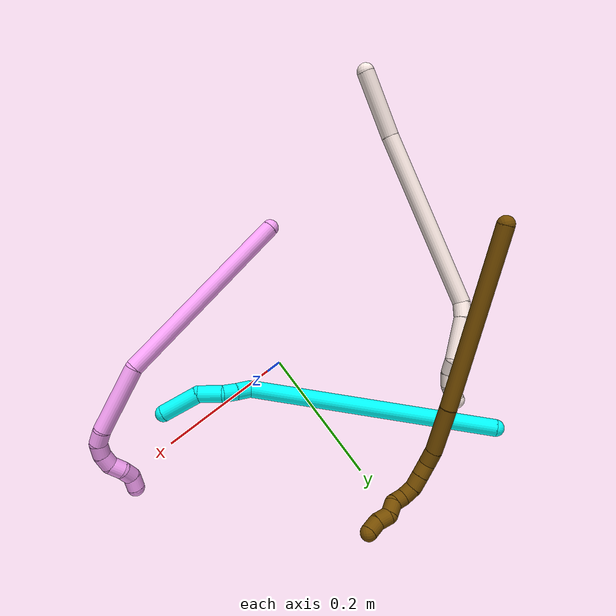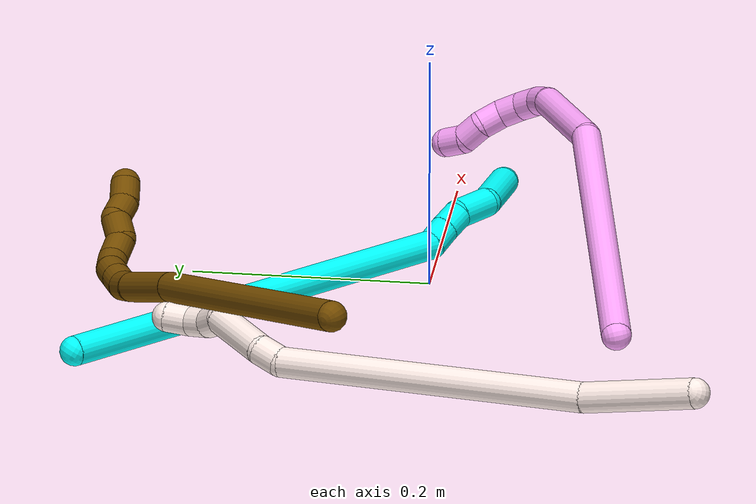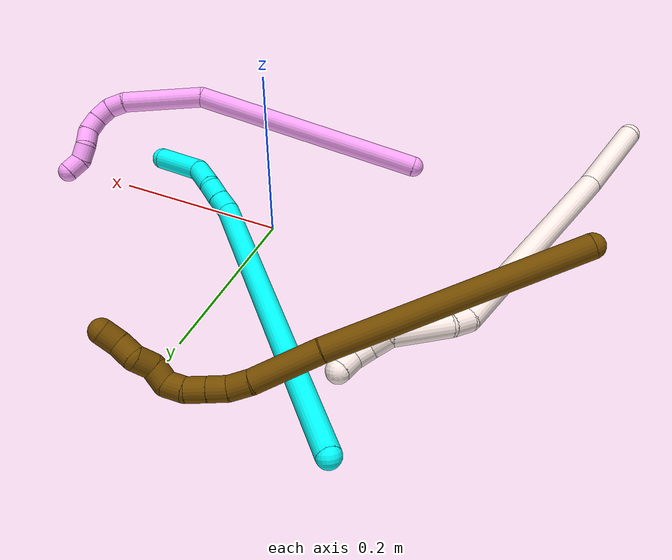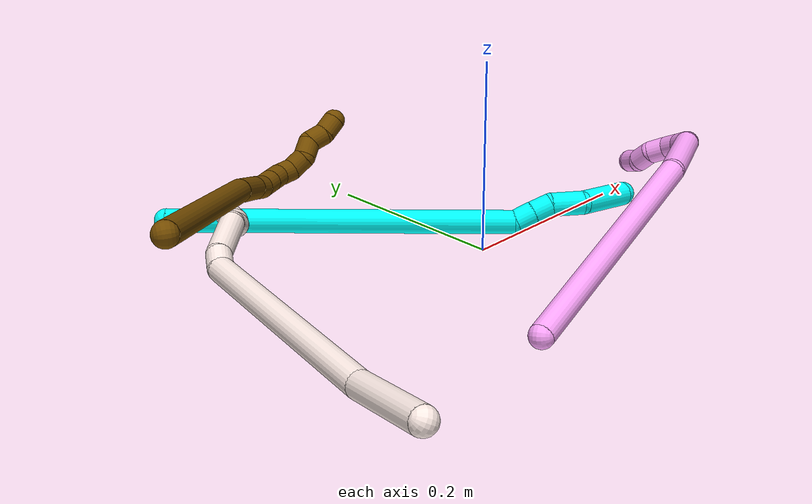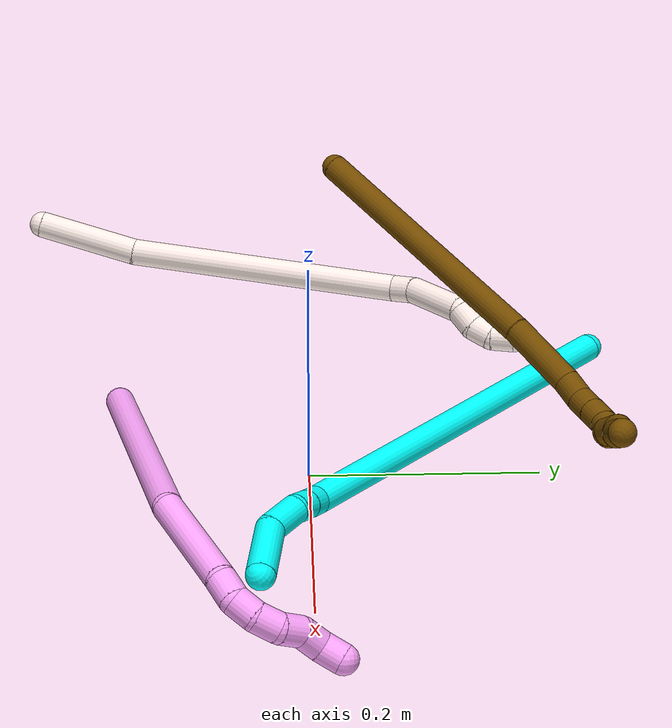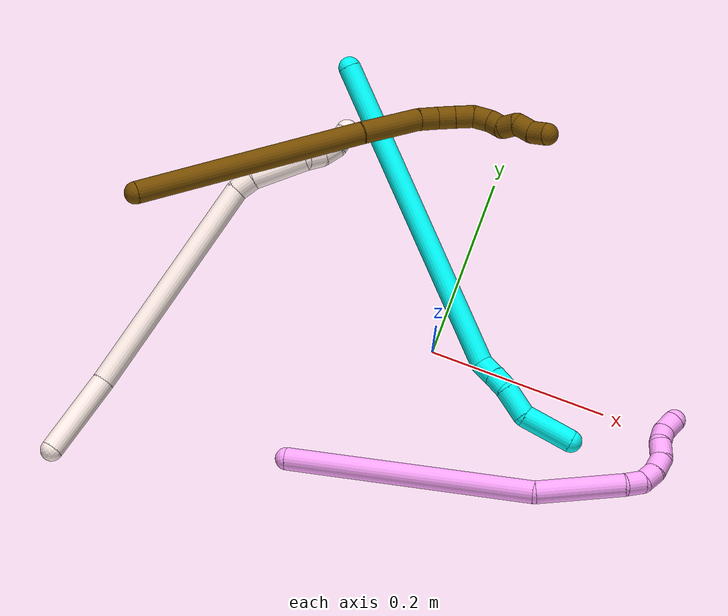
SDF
<sdf version="1.7">
 <world name="default">
  <model name="3">
   <static>0</static>
   <link name="3">
    <collision name="collision-cylinder-e_1_1_4">
     <pose>0.104138 -0.108624 -0.102714 2.32824 0.608435 1.25983</pose>
     <geometry><cylinder><radius>0.0125</radius><length>0.364385</length></cylinder></geometry>
     <surface>
      <friction><ode><mu>1.16</mu><mu2>1.16</mu2><slip1>0</slip1><slip2>0</slip2></ode></friction>
      <contact><ode><kp>1e+06</kp><kd>1</kd><max_vel>0</max_vel><min_depth>0.001</min_depth></ode></contact>
     </surface>
    </collision>
    <visual name="visual-cylinder-e_1_1_4">
     <pose>0.104138 -0.108624 -0.102714 2.32824 0.608435 1.25983</pose>
     <geometry><cylinder><radius>0.0125</radius><length>0.364385</length></cylinder></geometry>
     <material><ambient>0.003922 1 0.996078 1</ambient></material>
    </visual>
    <collision name="collision-cylinder-e_2_4_5">
     <pose>0.209643 -0.224105 -0.213383 2.43009 0.129393 0.345256</pose>
     <geometry><cylinder><radius>0.0125</radius><length>0.021183</length></cylinder></geometry>
     <surface>
      <friction><ode><mu>1.16</mu><mu2>1.16</mu2><slip1>0</slip1><slip2>0</slip2></ode></friction>
      <contact><ode><kp>1e+06</kp><kd>1</kd><max_vel>0</max_vel><min_depth>0.001</min_depth></ode></contact>
     </surface>
    </collision>
    <visual name="visual-cylinder-e_2_4_5">
     <pose>0.209643 -0.224105 -0.213383 2.43009 0.129393 0.345256</pose>
     <geometry><cylinder><radius>0.0125</radius><length>0.021183</length></cylinder></geometry>
     <material><ambient>0.003922 1 0.996078 1</ambient></material>
    </visual>
    <collision name="collision-cylinder-e_3_5_6">
     <pose>0.212839 -0.237364 -0.229285 2.46359 0.17737 0.494039</pose>
     <geometry><cylinder><radius>0.0125</radius><length>0.020735</length></cylinder></geometry>
     <surface>
      <friction><ode><mu>1.16</mu><mu2>1.16</mu2><slip1>0</slip1><slip2>0</slip2></ode></friction>
      <contact><ode><kp>1e+06</kp><kd>1</kd><max_vel>0</max_vel><min_depth>0.001</min_depth></ode></contact>
     </surface>
    </collision>
    <visual name="visual-cylinder-e_3_5_6">
     <pose>0.212839 -0.237364 -0.229285 2.46359 0.17737 0.494039</pose>
     <geometry><cylinder><radius>0.0125</radius><length>0.020735</length></cylinder></geometry>
     <material><ambient>0.003922 1 0.996078 1</ambient></material>
    </visual>
    <collision name="collision-cylinder-e_4_6_7">
     <pose>0.222633 -0.256225 -0.246723 2.22172 0.470468 0.901249</pose>
     <geometry><cylinder><radius>0.0125</radius><length>0.035142</length></cylinder></geometry>
     <surface>
      <friction><ode><mu>1.16</mu><mu2>1.16</mu2><slip1>0</slip1><slip2>0</slip2></ode></friction>
      <contact><ode><kp>1e+06</kp><kd>1</kd><max_vel>0</max_vel><min_depth>0.001</min_depth></ode></contact>
     </surface>
    </collision>
    <visual name="visual-cylinder-e_4_6_7">
     <pose>0.222633 -0.256225 -0.246723 2.22172 0.470468 0.901249</pose>
     <geometry><cylinder><radius>0.0125</radius><length>0.035142</length></cylinder></geometry>
     <material><ambient>0.003922 1 0.996078 1</ambient></material>
    </visual>
    <collision name="collision-cylinder-e_5_7_2">
     <pose>0.232909 -0.296415 -0.265316 1.88796 0.078997 0.109023</pose>
     <geometry><cylinder><radius>0.0125</radius><length>0.058555</length></cylinder></geometry>
     <surface>
      <friction><ode><mu>1.16</mu><mu2>1.16</mu2><slip1>0</slip1><slip2>0</slip2></ode></friction>
      <contact><ode><kp>1e+06</kp><kd>1</kd><max_vel>0</max_vel><min_depth>0.001</min_depth></ode></contact>
     </surface>
    </collision>
    <visual name="visual-cylinder-e_5_7_2">
     <pose>0.232909 -0.296415 -0.265316 1.88796 0.078997 0.109023</pose>
     <geometry><cylinder><radius>0.0125</radius><length>0.058555</length></cylinder></geometry>
     <material><ambient>0.003922 1 0.996078 1</ambient></material>
    </visual>
    <collision name="collision-sphere-2">
     <pose>0.235219 -0.324146 -0.274418 0 -0 0</pose>
     <geometry><sphere><radius>0.0125</radius></sphere></geometry>
     <surface>
      <friction><ode><mu>1.16</mu><mu2>1.16</mu2><slip1>0</slip1><slip2>0</slip2></ode></friction>
      <contact><ode><kp>1e+06</kp><kd>1</kd><max_vel>0</max_vel><min_depth>0.001</min_depth></ode></contact>
     </surface>
    </collision>
    <visual name="visual-sphere-2">
     <pose>0.235219 -0.324146 -0.274418 0 -0 0</pose>
     <geometry><sphere><radius>0.0125</radius></sphere></geometry>
     <material><ambient>0.003922 1 0.996078 1</ambient></material>
    </visual>
    <collision name="collision-sphere-7">
     <pose>0.230598 -0.268684 -0.256213 0 -0 0</pose>
     <geometry><sphere><radius>0.0125</radius></sphere></geometry>
     <surface>
      <friction><ode><mu>1.16</mu><mu2>1.16</mu2><slip1>0</slip1><slip2>0</slip2></ode></friction>
      <contact><ode><kp>1e+06</kp><kd>1</kd><max_vel>0</max_vel><min_depth>0.001</min_depth></ode></contact>
     </surface>
    </collision>
    <visual name="visual-sphere-7">
     <pose>0.230598 -0.268684 -0.256213 0 -0 0</pose>
     <geometry><sphere><radius>0.0125</radius></sphere></geometry>
     <material><ambient>0.003922 1 0.996078 1</ambient></material>
    </visual>
    <collision name="collision-sphere-6">
     <pose>0.214668 -0.243765 -0.237233 0 -0 0</pose>
     <geometry><sphere><radius>0.0125</radius></sphere></geometry>
     <surface>
      <friction><ode><mu>1.16</mu><mu2>1.16</mu2><slip1>0</slip1><slip2>0</slip2></ode></friction>
      <contact><ode><kp>1e+06</kp><kd>1</kd><max_vel>0</max_vel><min_depth>0.001</min_depth></ode></contact>
     </surface>
    </collision>
    <visual name="visual-sphere-6">
     <pose>0.214668 -0.243765 -0.237233 0 -0 0</pose>
     <geometry><sphere><radius>0.0125</radius></sphere></geometry>
     <material><ambient>0.003922 1 0.996078 1</ambient></material>
    </visual>
    <collision name="collision-sphere-5">
     <pose>0.21101 -0.230963 -0.221337 0 -0 0</pose>
     <geometry><sphere><radius>0.0125</radius></sphere></geometry>
     <surface>
      <friction><ode><mu>1.16</mu><mu2>1.16</mu2><slip1>0</slip1><slip2>0</slip2></ode></friction>
      <contact><ode><kp>1e+06</kp><kd>1</kd><max_vel>0</max_vel><min_depth>0.001</min_depth></ode></contact>
     </surface>
    </collision>
    <visual name="visual-sphere-5">
     <pose>0.21101 -0.230963 -0.221337 0 -0 0</pose>
     <geometry><sphere><radius>0.0125</radius></sphere></geometry>
     <material><ambient>0.003922 1 0.996078 1</ambient></material>
    </visual>
    <collision name="collision-sphere-1">
     <geometry><sphere><radius>0.0125</radius></sphere></geometry>
     <surface>
      <friction><ode><mu>1.16</mu><mu2>1.16</mu2><slip1>0</slip1><slip2>0</slip2></ode></friction>
      <contact><ode><kp>1e+06</kp><kd>1</kd><max_vel>0</max_vel><min_depth>0.001</min_depth></ode></contact>
     </surface>
    </collision>
    <visual name="visual-sphere-1">
     <geometry><sphere><radius>0.0125</radius></sphere></geometry>
     <material><ambient>0.003922 1 0.996078 1</ambient></material>
    </visual>
    <collision name="collision-sphere-4">
     <pose>0.208276 -0.217247 -0.205428 0 -0 0</pose>
     <geometry><sphere><radius>0.0125</radius></sphere></geometry>
     <surface>
      <friction><ode><mu>1.16</mu><mu2>1.16</mu2><slip1>0</slip1><slip2>0</slip2></ode></friction>
      <contact><ode><kp>1e+06</kp><kd>1</kd><max_vel>0</max_vel><min_depth>0.001</min_depth></ode></contact>
     </surface>
    </collision>
    <visual name="visual-sphere-4">
     <pose>0.208276 -0.217247 -0.205428 0 -0 0</pose>
     <geometry><sphere><radius>0.0125</radius></sphere></geometry>
     <material><ambient>0.003922 1 0.996078 1</ambient></material>
    </visual>
    <inertial>
     <pose>0.136525 -0.151221 -0.141816 0 -0 0</pose>
     <mass>0.5</mass>
     <inertia>
      <ixx>0.004226</ixx>
      <ixy>0</ixy>
      <ixz>0</ixz>
      <iyy>0.003883</iyy>
      <iyz>0</iyz>
      <izz>9.7e-05</izz>
     </inertia>
    </inertial>
   </link>
   <pose>-0.197233 0.26745 0.011979 2.76976 0.497132 -1.66702</pose>
  </model>
  <model name="4">
   <static>0</static>
   <link name="4">
    <collision name="collision-cylinder-e_1_1_4">
     <pose>0.036875 -0.132948 0.023148 1.39841 0.266742 0.224701</pose>
     <geometry><cylinder><radius>0.0125</radius><length>0.279791</length></cylinder></geometry>
     <surface>
      <friction><ode><mu>1.16</mu><mu2>1.16</mu2><slip1>0</slip1><slip2>0</slip2></ode></friction>
      <contact><ode><kp>1e+06</kp><kd>1</kd><max_vel>0</max_vel><min_depth>0.001</min_depth></ode></contact>
     </surface>
    </collision>
    <visual name="visual-cylinder-e_1_1_4">
     <pose>0.036875 -0.132948 0.023148 1.39841 0.266742 0.224701</pose>
     <geometry><cylinder><radius>0.0125</radius><length>0.279791</length></cylinder></geometry>
     <material><ambient>1 0.65098 0.996078 1</ambient></material>
    </visual>
    <collision name="collision-cylinder-e_2_4_5">
     <pose>0.074588 -0.314566 0.040399 1.69137 0.017082 0.019277</pose>
     <geometry><cylinder><radius>0.0125</radius><length>0.098068</length></cylinder></geometry>
     <surface>
      <friction><ode><mu>1.16</mu><mu2>1.16</mu2><slip1>0</slip1><slip2>0</slip2></ode></friction>
      <contact><ode><kp>1e+06</kp><kd>1</kd><max_vel>0</max_vel><min_depth>0.001</min_depth></ode></contact>
     </surface>
    </collision>
    <visual name="visual-cylinder-e_2_4_5">
     <pose>0.074588 -0.314566 0.040399 1.69137 0.017082 0.019277</pose>
     <geometry><cylinder><radius>0.0125</radius><length>0.098068</length></cylinder></geometry>
     <material><ambient>1 0.65098 0.996078 1</ambient></material>
    </visual>
    <collision name="collision-cylinder-e_3_5_6">
     <pose>0.072866 -0.373397 0.031907 1.82088 -0.239402 -0.307279</pose>
     <geometry><cylinder><radius>0.0125</radius><length>0.021588</length></cylinder></geometry>
     <surface>
      <friction><ode><mu>1.16</mu><mu2>1.16</mu2><slip1>0</slip1><slip2>0</slip2></ode></friction>
      <contact><ode><kp>1e+06</kp><kd>1</kd><max_vel>0</max_vel><min_depth>0.001</min_depth></ode></contact>
     </surface>
    </collision>
    <visual name="visual-cylinder-e_3_5_6">
     <pose>0.072866 -0.373397 0.031907 1.82088 -0.239402 -0.307279</pose>
     <geometry><cylinder><radius>0.0125</radius><length>0.021588</length></cylinder></geometry>
     <material><ambient>1 0.65098 0.996078 1</ambient></material>
    </visual>
    <collision name="collision-cylinder-e_4_6_7">
     <pose>0.067089 -0.390488 0.022763 2.32786 -0.325396 -0.727926</pose>
     <geometry><cylinder><radius>0.0125</radius><length>0.020128</length></cylinder></geometry>
     <surface>
      <friction><ode><mu>1.16</mu><mu2>1.16</mu2><slip1>0</slip1><slip2>0</slip2></ode></friction>
      <contact><ode><kp>1e+06</kp><kd>1</kd><max_vel>0</max_vel><min_depth>0.001</min_depth></ode></contact>
     </surface>
    </collision>
    <visual name="visual-cylinder-e_4_6_7">
     <pose>0.067089 -0.390488 0.022763 2.32786 -0.325396 -0.727926</pose>
     <geometry><cylinder><radius>0.0125</radius><length>0.020128</length></cylinder></geometry>
     <material><ambient>1 0.65098 0.996078 1</ambient></material>
    </visual>
    <collision name="collision-cylinder-e_5_7_8">
     <pose>0.060769 -0.401832 0.00759 2.66864 -0.309941 -1.15031</pose>
     <geometry><cylinder><radius>0.0125</radius><length>0.020343</length></cylinder></geometry>
     <surface>
      <friction><ode><mu>1.16</mu><mu2>1.16</mu2><slip1>0</slip1><slip2>0</slip2></ode></friction>
      <contact><ode><kp>1e+06</kp><kd>1</kd><max_vel>0</max_vel><min_depth>0.001</min_depth></ode></contact>
     </surface>
    </collision>
    <visual name="visual-cylinder-e_5_7_8">
     <pose>0.060769 -0.401832 0.00759 2.66864 -0.309941 -1.15031</pose>
     <geometry><cylinder><radius>0.0125</radius><length>0.020343</length></cylinder></geometry>
     <material><ambient>1 0.65098 0.996078 1</ambient></material>
    </visual>
    <collision name="collision-cylinder-e_6_8_9">
     <pose>0.054807 -0.405962 -0.010615 -3.11207 -0.289979 2.94007</pose>
     <geometry><cylinder><radius>0.0125</radius><length>0.020008</length></cylinder></geometry>
     <surface>
      <friction><ode><mu>1.16</mu><mu2>1.16</mu2><slip1>0</slip1><slip2>0</slip2></ode></friction>
      <contact><ode><kp>1e+06</kp><kd>1</kd><max_vel>0</max_vel><min_depth>0.001</min_depth></ode></contact>
     </surface>
    </collision>
    <visual name="visual-cylinder-e_6_8_9">
     <pose>0.054807 -0.405962 -0.010615 -3.11207 -0.289979 2.94007</pose>
     <geometry><cylinder><radius>0.0125</radius><length>0.020008</length></cylinder></geometry>
     <material><ambient>1 0.65098 0.996078 1</ambient></material>
    </visual>
    <collision name="collision-cylinder-e_7_9_10">
     <pose>0.04631 -0.408269 -0.028059 2.82328 -0.597814 -2.1811</pose>
     <geometry><cylinder><radius>0.0125</radius><length>0.020029</length></cylinder></geometry>
     <surface>
      <friction><ode><mu>1.16</mu><mu2>1.16</mu2><slip1>0</slip1><slip2>0</slip2></ode></friction>
      <contact><ode><kp>1e+06</kp><kd>1</kd><max_vel>0</max_vel><min_depth>0.001</min_depth></ode></contact>
     </surface>
    </collision>
    <visual name="visual-cylinder-e_7_9_10">
     <pose>0.04631 -0.408269 -0.028059 2.82328 -0.597814 -2.1811</pose>
     <geometry><cylinder><radius>0.0125</radius><length>0.020029</length></cylinder></geometry>
     <material><ambient>1 0.65098 0.996078 1</ambient></material>
    </visual>
    <collision name="collision-cylinder-e_8_10_2">
     <pose>0.038481 -0.417316 -0.043268 2.42059 -0.220458 -0.571137</pose>
     <geometry><cylinder><radius>0.0125</radius><length>0.020046</length></cylinder></geometry>
     <surface>
      <friction><ode><mu>1.16</mu><mu2>1.16</mu2><slip1>0</slip1><slip2>0</slip2></ode></friction>
      <contact><ode><kp>1e+06</kp><kd>1</kd><max_vel>0</max_vel><min_depth>0.001</min_depth></ode></contact>
     </surface>
    </collision>
    <visual name="visual-cylinder-e_8_10_2">
     <pose>0.038481 -0.417316 -0.043268 2.42059 -0.220458 -0.571137</pose>
     <geometry><cylinder><radius>0.0125</radius><length>0.020046</length></cylinder></geometry>
     <material><ambient>1 0.65098 0.996078 1</ambient></material>
    </visual>
    <collision name="collision-sphere-2">
     <pose>0.036289 -0.423773 -0.050614 0 -0 0</pose>
     <geometry><sphere><radius>0.0125</radius></sphere></geometry>
     <surface>
      <friction><ode><mu>1.16</mu><mu2>1.16</mu2><slip1>0</slip1><slip2>0</slip2></ode></friction>
      <contact><ode><kp>1e+06</kp><kd>1</kd><max_vel>0</max_vel><min_depth>0.001</min_depth></ode></contact>
     </surface>
    </collision>
    <visual name="visual-sphere-2">
     <pose>0.036289 -0.423773 -0.050614 0 -0 0</pose>
     <geometry><sphere><radius>0.0125</radius></sphere></geometry>
     <material><ambient>1 0.65098 0.996078 1</ambient></material>
    </visual>
    <collision name="collision-sphere-10">
     <pose>0.040673 -0.41086 -0.035921 0 -0 0</pose>
     <geometry><sphere><radius>0.0125</radius></sphere></geometry>
     <surface>
      <friction><ode><mu>1.16</mu><mu2>1.16</mu2><slip1>0</slip1><slip2>0</slip2></ode></friction>
      <contact><ode><kp>1e+06</kp><kd>1</kd><max_vel>0</max_vel><min_depth>0.001</min_depth></ode></contact>
     </surface>
    </collision>
    <visual name="visual-sphere-10">
     <pose>0.040673 -0.41086 -0.035921 0 -0 0</pose>
     <geometry><sphere><radius>0.0125</radius></sphere></geometry>
     <material><ambient>1 0.65098 0.996078 1</ambient></material>
    </visual>
    <collision name="collision-sphere-9">
     <pose>0.051946 -0.405679 -0.020197 0 -0 0</pose>
     <geometry><sphere><radius>0.0125</radius></sphere></geometry>
     <surface>
      <friction><ode><mu>1.16</mu><mu2>1.16</mu2><slip1>0</slip1><slip2>0</slip2></ode></friction>
      <contact><ode><kp>1e+06</kp><kd>1</kd><max_vel>0</max_vel><min_depth>0.001</min_depth></ode></contact>
     </surface>
    </collision>
    <visual name="visual-sphere-9">
     <pose>0.051946 -0.405679 -0.020197 0 -0 0</pose>
     <geometry><sphere><radius>0.0125</radius></sphere></geometry>
     <material><ambient>1 0.65098 0.996078 1</ambient></material>
    </visual>
    <collision name="collision-sphere-4">
     <pose>0.07375 -0.265896 0.046296 0 -0 0</pose>
     <geometry><sphere><radius>0.0125</radius></sphere></geometry>
     <surface>
      <friction><ode><mu>1.16</mu><mu2>1.16</mu2><slip1>0</slip1><slip2>0</slip2></ode></friction>
      <contact><ode><kp>1e+06</kp><kd>1</kd><max_vel>0</max_vel><min_depth>0.001</min_depth></ode></contact>
     </surface>
    </collision>
    <visual name="visual-sphere-4">
     <pose>0.07375 -0.265896 0.046296 0 -0 0</pose>
     <geometry><sphere><radius>0.0125</radius></sphere></geometry>
     <material><ambient>1 0.65098 0.996078 1</ambient></material>
    </visual>
    <collision name="collision-sphere-1">
     <geometry><sphere><radius>0.0125</radius></sphere></geometry>
     <surface>
      <friction><ode><mu>1.16</mu><mu2>1.16</mu2><slip1>0</slip1><slip2>0</slip2></ode></friction>
      <contact><ode><kp>1e+06</kp><kd>1</kd><max_vel>0</max_vel><min_depth>0.001</min_depth></ode></contact>
     </surface>
    </collision>
    <visual name="visual-sphere-1">
     <geometry><sphere><radius>0.0125</radius></sphere></geometry>
     <material><ambient>1 0.65098 0.996078 1</ambient></material>
    </visual>
    <collision name="collision-sphere-8">
     <pose>0.057667 -0.406245 -0.001033 0 -0 0</pose>
     <geometry><sphere><radius>0.0125</radius></sphere></geometry>
     <surface>
      <friction><ode><mu>1.16</mu><mu2>1.16</mu2><slip1>0</slip1><slip2>0</slip2></ode></friction>
      <contact><ode><kp>1e+06</kp><kd>1</kd><max_vel>0</max_vel><min_depth>0.001</min_depth></ode></contact>
     </surface>
    </collision>
    <visual name="visual-sphere-8">
     <pose>0.057667 -0.406245 -0.001033 0 -0 0</pose>
     <geometry><sphere><radius>0.0125</radius></sphere></geometry>
     <material><ambient>1 0.65098 0.996078 1</ambient></material>
    </visual>
    <collision name="collision-sphere-5">
     <pose>0.075425 -0.363237 0.034502 0 -0 0</pose>
     <geometry><sphere><radius>0.0125</radius></sphere></geometry>
     <surface>
      <friction><ode><mu>1.16</mu><mu2>1.16</mu2><slip1>0</slip1><slip2>0</slip2></ode></friction>
      <contact><ode><kp>1e+06</kp><kd>1</kd><max_vel>0</max_vel><min_depth>0.001</min_depth></ode></contact>
     </surface>
    </collision>
    <visual name="visual-sphere-5">
     <pose>0.075425 -0.363237 0.034502 0 -0 0</pose>
     <geometry><sphere><radius>0.0125</radius></sphere></geometry>
     <material><ambient>1 0.65098 0.996078 1</ambient></material>
    </visual>
    <collision name="collision-sphere-6">
     <pose>0.070306 -0.383557 0.029312 0 -0 0</pose>
     <geometry><sphere><radius>0.0125</radius></sphere></geometry>
     <surface>
      <friction><ode><mu>1.16</mu><mu2>1.16</mu2><slip1>0</slip1><slip2>0</slip2></ode></friction>
      <contact><ode><kp>1e+06</kp><kd>1</kd><max_vel>0</max_vel><min_depth>0.001</min_depth></ode></contact>
     </surface>
    </collision>
    <visual name="visual-sphere-6">
     <pose>0.070306 -0.383557 0.029312 0 -0 0</pose>
     <geometry><sphere><radius>0.0125</radius></sphere></geometry>
     <material><ambient>1 0.65098 0.996078 1</ambient></material>
    </visual>
    <collision name="collision-sphere-7">
     <pose>0.063872 -0.39742 0.016214 0 -0 0</pose>
     <geometry><sphere><radius>0.0125</radius></sphere></geometry>
     <surface>
      <friction><ode><mu>1.16</mu><mu2>1.16</mu2><slip1>0</slip1><slip2>0</slip2></ode></friction>
      <contact><ode><kp>1e+06</kp><kd>1</kd><max_vel>0</max_vel><min_depth>0.001</min_depth></ode></contact>
     </surface>
    </collision>
    <visual name="visual-sphere-7">
     <pose>0.063872 -0.39742 0.016214 0 -0 0</pose>
     <geometry><sphere><radius>0.0125</radius></sphere></geometry>
     <material><ambient>1 0.65098 0.996078 1</ambient></material>
    </visual>
    <inertial>
     <pose>0.049174 -0.233613 0.020196 0 -0 0</pose>
     <mass>0.5</mass>
     <inertia>
      <ixx>0.002206</ixx>
      <ixy>0</ixy>
      <ixz>0</ixz>
      <iyy>0.000763</iyy>
      <iyz>0</iyz>
      <izz>0.001345</izz>
     </inertia>
    </inertial>
   </link>
   <pose>-0.109647 -0.16787 0.011836 0.40138 -1.40386 1.49692</pose>
  </model>
  <model name="11">
   <static>0</static>
   <link name="11">
    <collision name="collision-cylinder-e_1_1_4">
     <pose>-0.016794 0.044527 -0.003102 -1.64035 -0.359866 0.385194</pose>
     <geometry><cylinder><radius>0.0125</radius><length>0.095379</length></cylinder></geometry>
     <surface>
      <friction><ode><mu>1.16</mu><mu2>1.16</mu2><slip1>0</slip1><slip2>0</slip2></ode></friction>
      <contact><ode><kp>1e+06</kp><kd>1</kd><max_vel>0</max_vel><min_depth>0.001</min_depth></ode></contact>
     </surface>
    </collision>
    <visual name="visual-cylinder-e_1_1_4">
     <pose>-0.016794 0.044527 -0.003102 -1.64035 -0.359866 0.385194</pose>
     <geometry><cylinder><radius>0.0125</radius><length>0.095379</length></cylinder></geometry>
     <material><ambient>1 0.933333 0.909804 1</ambient></material>
    </visual>
    <collision name="collision-cylinder-e_2_4_5">
     <pose>-0.09385 0.201113 -0.026944 -1.7538 -0.486416 0.579708</pose>
     <geometry><cylinder><radius>0.0125</radius><length>0.257829</length></cylinder></geometry>
     <surface>
      <friction><ode><mu>1.16</mu><mu2>1.16</mu2><slip1>0</slip1><slip2>0</slip2></ode></friction>
      <contact><ode><kp>1e+06</kp><kd>1</kd><max_vel>0</max_vel><min_depth>0.001</min_depth></ode></contact>
     </surface>
    </collision>
    <visual name="visual-cylinder-e_2_4_5">
     <pose>-0.09385 0.201113 -0.026944 -1.7538 -0.486416 0.579708</pose>
     <geometry><cylinder><radius>0.0125</radius><length>0.257829</length></cylinder></geometry>
     <material><ambient>1 0.933333 0.909804 1</ambient></material>
    </visual>
    <collision name="collision-cylinder-e_3_5_6">
     <pose>-0.162753 0.320353 -0.047382 -1.52892 -0.876981 0.845207</pose>
     <geometry><cylinder><radius>0.0125</radius><length>0.022478</length></cylinder></geometry>
     <surface>
      <friction><ode><mu>1.16</mu><mu2>1.16</mu2><slip1>0</slip1><slip2>0</slip2></ode></friction>
      <contact><ode><kp>1e+06</kp><kd>1</kd><max_vel>0</max_vel><min_depth>0.001</min_depth></ode></contact>
     </surface>
    </collision>
    <visual name="visual-cylinder-e_3_5_6">
     <pose>-0.162753 0.320353 -0.047382 -1.52892 -0.876981 0.845207</pose>
     <geometry><cylinder><radius>0.0125</radius><length>0.022478</length></cylinder></geometry>
     <material><ambient>1 0.933333 0.909804 1</ambient></material>
    </visual>
    <collision name="collision-cylinder-e_4_6_7">
     <pose>-0.194543 0.34508 -0.037297 -1.06214 -0.856012 0.523614</pose>
     <geometry><cylinder><radius>0.0125</radius><length>0.061302</length></cylinder></geometry>
     <surface>
      <friction><ode><mu>1.16</mu><mu2>1.16</mu2><slip1>0</slip1><slip2>0</slip2></ode></friction>
      <contact><ode><kp>1e+06</kp><kd>1</kd><max_vel>0</max_vel><min_depth>0.001</min_depth></ode></contact>
     </surface>
    </collision>
    <visual name="visual-cylinder-e_4_6_7">
     <pose>-0.194543 0.34508 -0.037297 -1.06214 -0.856012 0.523614</pose>
     <geometry><cylinder><radius>0.0125</radius><length>0.061302</length></cylinder></geometry>
     <material><ambient>1 0.933333 0.909804 1</ambient></material>
    </visual>
    <collision name="collision-cylinder-e_5_7_8">
     <pose>-0.220847 0.371081 -0.021605 -0.960868 -0.296949 0.155591</pose>
     <geometry><cylinder><radius>0.0125</radius><length>0.021572</length></cylinder></geometry>
     <surface>
      <friction><ode><mu>1.16</mu><mu2>1.16</mu2><slip1>0</slip1><slip2>0</slip2></ode></friction>
      <contact><ode><kp>1e+06</kp><kd>1</kd><max_vel>0</max_vel><min_depth>0.001</min_depth></ode></contact>
     </surface>
    </collision>
    <visual name="visual-cylinder-e_5_7_8">
     <pose>-0.220847 0.371081 -0.021605 -0.960868 -0.296949 0.155591</pose>
     <geometry><cylinder><radius>0.0125</radius><length>0.021572</length></cylinder></geometry>
     <material><ambient>1 0.933333 0.909804 1</ambient></material>
    </visual>
    <collision name="collision-cylinder-e_6_8_9">
     <pose>-0.228847 0.387925 -0.013208 -1.28235 -0.5055 0.380863</pose>
     <geometry><cylinder><radius>0.0125</radius><length>0.020003</length></cylinder></geometry>
     <surface>
      <friction><ode><mu>1.16</mu><mu2>1.16</mu2><slip1>0</slip1><slip2>0</slip2></ode></friction>
      <contact><ode><kp>1e+06</kp><kd>1</kd><max_vel>0</max_vel><min_depth>0.001</min_depth></ode></contact>
     </surface>
    </collision>
    <visual name="visual-cylinder-e_6_8_9">
     <pose>-0.228847 0.387925 -0.013208 -1.28235 -0.5055 0.380863</pose>
     <geometry><cylinder><radius>0.0125</radius><length>0.020003</length></cylinder></geometry>
     <material><ambient>1 0.933333 0.909804 1</ambient></material>
    </visual>
    <collision name="collision-cylinder-e_7_9_2">
     <pose>-0.239172 0.405277 -0.012838 -1.80306 -0.536895 0.669326</pose>
     <geometry><cylinder><radius>0.0125</radius><length>0.021437</length></cylinder></geometry>
     <surface>
      <friction><ode><mu>1.16</mu><mu2>1.16</mu2><slip1>0</slip1><slip2>0</slip2></ode></friction>
      <contact><ode><kp>1e+06</kp><kd>1</kd><max_vel>0</max_vel><min_depth>0.001</min_depth></ode></contact>
     </surface>
    </collision>
    <visual name="visual-cylinder-e_7_9_2">
     <pose>-0.239172 0.405277 -0.012838 -1.80306 -0.536895 0.669326</pose>
     <geometry><cylinder><radius>0.0125</radius><length>0.021437</length></cylinder></geometry>
     <material><ambient>1 0.933333 0.909804 1</ambient></material>
    </visual>
    <collision name="collision-sphere-2">
     <pose>-0.244654 0.41424 -0.014958 0 -0 0</pose>
     <geometry><sphere><radius>0.0125</radius></sphere></geometry>
     <surface>
      <friction><ode><mu>1.16</mu><mu2>1.16</mu2><slip1>0</slip1><slip2>0</slip2></ode></friction>
      <contact><ode><kp>1e+06</kp><kd>1</kd><max_vel>0</max_vel><min_depth>0.001</min_depth></ode></contact>
     </surface>
    </collision>
    <visual name="visual-sphere-2">
     <pose>-0.244654 0.41424 -0.014958 0 -0 0</pose>
     <geometry><sphere><radius>0.0125</radius></sphere></geometry>
     <material><ambient>1 0.933333 0.909804 1</ambient></material>
    </visual>
    <collision name="collision-sphere-9">
     <pose>-0.23369 0.396314 -0.010718 0 -0 0</pose>
     <geometry><sphere><radius>0.0125</radius></sphere></geometry>
     <surface>
      <friction><ode><mu>1.16</mu><mu2>1.16</mu2><slip1>0</slip1><slip2>0</slip2></ode></friction>
      <contact><ode><kp>1e+06</kp><kd>1</kd><max_vel>0</max_vel><min_depth>0.001</min_depth></ode></contact>
     </surface>
    </collision>
    <visual name="visual-sphere-9">
     <pose>-0.23369 0.396314 -0.010718 0 -0 0</pose>
     <geometry><sphere><radius>0.0125</radius></sphere></geometry>
     <material><ambient>1 0.933333 0.909804 1</ambient></material>
    </visual>
    <collision name="collision-sphere-4">
     <pose>-0.033588 0.089054 -0.006204 0 -0 0</pose>
     <geometry><sphere><radius>0.0125</radius></sphere></geometry>
     <surface>
      <friction><ode><mu>1.16</mu><mu2>1.16</mu2><slip1>0</slip1><slip2>0</slip2></ode></friction>
      <contact><ode><kp>1e+06</kp><kd>1</kd><max_vel>0</max_vel><min_depth>0.001</min_depth></ode></contact>
     </surface>
    </collision>
    <visual name="visual-sphere-4">
     <pose>-0.033588 0.089054 -0.006204 0 -0 0</pose>
     <geometry><sphere><radius>0.0125</radius></sphere></geometry>
     <material><ambient>1 0.933333 0.909804 1</ambient></material>
    </visual>
    <collision name="collision-sphere-1">
     <geometry><sphere><radius>0.0125</radius></sphere></geometry>
     <surface>
      <friction><ode><mu>1.16</mu><mu2>1.16</mu2><slip1>0</slip1><slip2>0</slip2></ode></friction>
      <contact><ode><kp>1e+06</kp><kd>1</kd><max_vel>0</max_vel><min_depth>0.001</min_depth></ode></contact>
     </surface>
    </collision>
    <visual name="visual-sphere-1">
     <geometry><sphere><radius>0.0125</radius></sphere></geometry>
     <material><ambient>1 0.933333 0.909804 1</ambient></material>
    </visual>
    <collision name="collision-sphere-8">
     <pose>-0.224003 0.379536 -0.015697 0 -0 0</pose>
     <geometry><sphere><radius>0.0125</radius></sphere></geometry>
     <surface>
      <friction><ode><mu>1.16</mu><mu2>1.16</mu2><slip1>0</slip1><slip2>0</slip2></ode></friction>
      <contact><ode><kp>1e+06</kp><kd>1</kd><max_vel>0</max_vel><min_depth>0.001</min_depth></ode></contact>
     </surface>
    </collision>
    <visual name="visual-sphere-8">
     <pose>-0.224003 0.379536 -0.015697 0 -0 0</pose>
     <geometry><sphere><radius>0.0125</radius></sphere></geometry>
     <material><ambient>1 0.933333 0.909804 1</ambient></material>
    </visual>
    <collision name="collision-sphere-5">
     <pose>-0.154112 0.313172 -0.047683 0 -0 0</pose>
     <geometry><sphere><radius>0.0125</radius></sphere></geometry>
     <surface>
      <friction><ode><mu>1.16</mu><mu2>1.16</mu2><slip1>0</slip1><slip2>0</slip2></ode></friction>
      <contact><ode><kp>1e+06</kp><kd>1</kd><max_vel>0</max_vel><min_depth>0.001</min_depth></ode></contact>
     </surface>
    </collision>
    <visual name="visual-sphere-5">
     <pose>-0.154112 0.313172 -0.047683 0 -0 0</pose>
     <geometry><sphere><radius>0.0125</radius></sphere></geometry>
     <material><ambient>1 0.933333 0.909804 1</ambient></material>
    </visual>
    <collision name="collision-sphere-6">
     <pose>-0.171394 0.327534 -0.047081 0 -0 0</pose>
     <geometry><sphere><radius>0.0125</radius></sphere></geometry>
     <surface>
      <friction><ode><mu>1.16</mu><mu2>1.16</mu2><slip1>0</slip1><slip2>0</slip2></ode></friction>
      <contact><ode><kp>1e+06</kp><kd>1</kd><max_vel>0</max_vel><min_depth>0.001</min_depth></ode></contact>
     </surface>
    </collision>
    <visual name="visual-sphere-6">
     <pose>-0.171394 0.327534 -0.047081 0 -0 0</pose>
     <geometry><sphere><radius>0.0125</radius></sphere></geometry>
     <material><ambient>1 0.933333 0.909804 1</ambient></material>
    </visual>
    <collision name="collision-sphere-7">
     <pose>-0.217691 0.362627 -0.027513 0 -0 0</pose>
     <geometry><sphere><radius>0.0125</radius></sphere></geometry>
     <surface>
      <friction><ode><mu>1.16</mu><mu2>1.16</mu2><slip1>0</slip1><slip2>0</slip2></ode></friction>
      <contact><ode><kp>1e+06</kp><kd>1</kd><max_vel>0</max_vel><min_depth>0.001</min_depth></ode></contact>
     </surface>
    </collision>
    <visual name="visual-sphere-7">
     <pose>-0.217691 0.362627 -0.027513 0 -0 0</pose>
     <geometry><sphere><radius>0.0125</radius></sphere></geometry>
     <material><ambient>1 0.933333 0.909804 1</ambient></material>
    </visual>
    <inertial>
     <pose>-0.111704 0.217814 -0.023199 0 -0 0</pose>
     <mass>0.5</mass>
     <inertia>
      <ixx>0.00186</ixx>
      <ixy>0</ixy>
      <ixz>0</ixz>
      <iyy>0.000933</iyy>
      <iyz>0</iyz>
      <izz>-0.000621</izz>
     </inertia>
    </inertial>
   </link>
   <pose>-0.347039 -0.252573 0.072923 -2.35085 0.760795 -2.62213</pose>
  </model>
  <model name="12">
   <static>0</static>
   <link name="12">
    <collision name="collision-cylinder-e_1_1_4">
     <pose>0.120125 0.024081 -0.051646 -2.70529 1.12786 -2.46732</pose>
     <geometry><cylinder><radius>0.0125</radius><length>0.265911</length></cylinder></geometry>
     <surface>
      <friction><ode><mu>1.16</mu><mu2>1.16</mu2><slip1>0</slip1><slip2>0</slip2></ode></friction>
      <contact><ode><kp>1e+06</kp><kd>1</kd><max_vel>0</max_vel><min_depth>0.001</min_depth></ode></contact>
     </surface>
    </collision>
    <visual name="visual-cylinder-e_1_1_4">
     <pose>0.120125 0.024081 -0.051646 -2.70529 1.12786 -2.46732</pose>
     <geometry><cylinder><radius>0.0125</radius><length>0.265911</length></cylinder></geometry>
     <material><ambient>0.466667 0.301961 0 1</ambient></material>
    </visual>
    <collision name="collision-cylinder-e_2_4_5">
     <pose>0.271487 0.057578 -0.116633 -2.52704 1.08911 -2.17634</pose>
     <geometry><cylinder><radius>0.0125</radius><length>0.070496</length></cylinder></geometry>
     <surface>
      <friction><ode><mu>1.16</mu><mu2>1.16</mu2><slip1>0</slip1><slip2>0</slip2></ode></friction>
      <contact><ode><kp>1e+06</kp><kd>1</kd><max_vel>0</max_vel><min_depth>0.001</min_depth></ode></contact>
     </surface>
    </collision>
    <visual name="visual-cylinder-e_2_4_5">
     <pose>0.271487 0.057578 -0.116633 -2.52704 1.08911 -2.17634</pose>
     <geometry><cylinder><radius>0.0125</radius><length>0.070496</length></cylinder></geometry>
     <material><ambient>0.466667 0.301961 0 1</ambient></material>
    </visual>
    <collision name="collision-cylinder-e_3_5_6">
     <pose>0.312015 0.069931 -0.135891 -2.68075 0.952757 -2.28822</pose>
     <geometry><cylinder><radius>0.0125</radius><length>0.022799</length></cylinder></geometry>
     <surface>
      <friction><ode><mu>1.16</mu><mu2>1.16</mu2><slip1>0</slip1><slip2>0</slip2></ode></friction>
      <contact><ode><kp>1e+06</kp><kd>1</kd><max_vel>0</max_vel><min_depth>0.001</min_depth></ode></contact>
     </surface>
    </collision>
    <visual name="visual-cylinder-e_3_5_6">
     <pose>0.312015 0.069931 -0.135891 -2.68075 0.952757 -2.28822</pose>
     <geometry><cylinder><radius>0.0125</radius><length>0.022799</length></cylinder></geometry>
     <material><ambient>0.466667 0.301961 0 1</ambient></material>
    </visual>
    <collision name="collision-cylinder-e_4_6_7">
     <pose>0.329147 0.072762 -0.148055 3.12461 0.898008 3.10636</pose>
     <geometry><cylinder><radius>0.0125</radius><length>0.020053</length></cylinder></geometry>
     <surface>
      <friction><ode><mu>1.16</mu><mu2>1.16</mu2><slip1>0</slip1><slip2>0</slip2></ode></friction>
      <contact><ode><kp>1e+06</kp><kd>1</kd><max_vel>0</max_vel><min_depth>0.001</min_depth></ode></contact>
     </surface>
    </collision>
    <visual name="visual-cylinder-e_4_6_7">
     <pose>0.329147 0.072762 -0.148055 3.12461 0.898008 3.10636</pose>
     <geometry><cylinder><radius>0.0125</radius><length>0.020053</length></cylinder></geometry>
     <material><ambient>0.466667 0.301961 0 1</ambient></material>
    </visual>
    <collision name="collision-cylinder-e_5_7_8">
     <pose>0.34501 0.072556 -0.160814 3.12632 0.888759 3.10952</pose>
     <geometry><cylinder><radius>0.0125</radius><length>0.020664</length></cylinder></geometry>
     <surface>
      <friction><ode><mu>1.16</mu><mu2>1.16</mu2><slip1>0</slip1><slip2>0</slip2></ode></friction>
      <contact><ode><kp>1e+06</kp><kd>1</kd><max_vel>0</max_vel><min_depth>0.001</min_depth></ode></contact>
     </surface>
    </collision>
    <visual name="visual-cylinder-e_5_7_8">
     <pose>0.34501 0.072556 -0.160814 3.12632 0.888759 3.10952</pose>
     <geometry><cylinder><radius>0.0125</radius><length>0.020664</length></cylinder></geometry>
     <material><ambient>0.466667 0.301961 0 1</ambient></material>
    </visual>
    <collision name="collision-cylinder-e_6_8_9">
     <pose>0.358193 0.071823 -0.175898 3.06783 0.540961 2.87699</pose>
     <geometry><cylinder><radius>0.0125</radius><length>0.020052</length></cylinder></geometry>
     <surface>
      <friction><ode><mu>1.16</mu><mu2>1.16</mu2><slip1>0</slip1><slip2>0</slip2></ode></friction>
      <contact><ode><kp>1e+06</kp><kd>1</kd><max_vel>0</max_vel><min_depth>0.001</min_depth></ode></contact>
     </surface>
    </collision>
    <visual name="visual-cylinder-e_6_8_9">
     <pose>0.358193 0.071823 -0.175898 3.06783 0.540961 2.87699</pose>
     <geometry><cylinder><radius>0.0125</radius><length>0.020052</length></cylinder></geometry>
     <material><ambient>0.466667 0.301961 0 1</ambient></material>
    </visual>
    <collision name="collision-cylinder-e_7_9_10">
     <pose>0.364013 0.06538 -0.192591 2.52063 0.065628 0.203903</pose>
     <geometry><cylinder><radius>0.0125</radius><length>0.020015</length></cylinder></geometry>
     <surface>
      <friction><ode><mu>1.16</mu><mu2>1.16</mu2><slip1>0</slip1><slip2>0</slip2></ode></friction>
      <contact><ode><kp>1e+06</kp><kd>1</kd><max_vel>0</max_vel><min_depth>0.001</min_depth></ode></contact>
     </surface>
    </collision>
    <visual name="visual-cylinder-e_7_9_10">
     <pose>0.364013 0.06538 -0.192591 2.52063 0.065628 0.203903</pose>
     <geometry><cylinder><radius>0.0125</radius><length>0.020015</length></cylinder></geometry>
     <material><ambient>0.466667 0.301961 0 1</ambient></material>
    </visual>
    <collision name="collision-cylinder-e_8_10_11">
     <pose>0.370264 0.052921 -0.205666 2.21112 0.593581 1.09435</pose>
     <geometry><cylinder><radius>0.0125</radius><length>0.020005</length></cylinder></geometry>
     <surface>
      <friction><ode><mu>1.16</mu><mu2>1.16</mu2><slip1>0</slip1><slip2>0</slip2></ode></friction>
      <contact><ode><kp>1e+06</kp><kd>1</kd><max_vel>0</max_vel><min_depth>0.001</min_depth></ode></contact>
     </surface>
    </collision>
    <visual name="visual-cylinder-e_8_10_11">
     <pose>0.370264 0.052921 -0.205666 2.21112 0.593581 1.09435</pose>
     <geometry><cylinder><radius>0.0125</radius><length>0.020005</length></cylinder></geometry>
     <material><ambient>0.466667 0.301961 0 1</ambient></material>
    </visual>
    <collision name="collision-cylinder-e_9_11_12">
     <pose>0.377736 0.043164 -0.219939 2.81967 0.188815 1.05591</pose>
     <geometry><cylinder><radius>0.0125</radius><length>0.020002</length></cylinder></geometry>
     <surface>
      <friction><ode><mu>1.16</mu><mu2>1.16</mu2><slip1>0</slip1><slip2>0</slip2></ode></friction>
      <contact><ode><kp>1e+06</kp><kd>1</kd><max_vel>0</max_vel><min_depth>0.001</min_depth></ode></contact>
     </surface>
    </collision>
    <visual name="visual-cylinder-e_9_11_12">
     <pose>0.377736 0.043164 -0.219939 2.81967 0.188815 1.05591</pose>
     <geometry><cylinder><radius>0.0125</radius><length>0.020002</length></cylinder></geometry>
     <material><ambient>0.466667 0.301961 0 1</ambient></material>
    </visual>
    <collision name="collision-cylinder-e_10_12_2">
     <pose>0.38349 0.034348 -0.236497 2.4739 0.398144 1.05368</pose>
     <geometry><cylinder><radius>0.0125</radius><length>0.020002</length></cylinder></geometry>
     <surface>
      <friction><ode><mu>1.16</mu><mu2>1.16</mu2><slip1>0</slip1><slip2>0</slip2></ode></friction>
      <contact><ode><kp>1e+06</kp><kd>1</kd><max_vel>0</max_vel><min_depth>0.001</min_depth></ode></contact>
     </surface>
    </collision>
    <visual name="visual-cylinder-e_10_12_2">
     <pose>0.38349 0.034348 -0.236497 2.4739 0.398144 1.05368</pose>
     <geometry><cylinder><radius>0.0125</radius><length>0.020002</length></cylinder></geometry>
     <material><ambient>0.466667 0.301961 0 1</ambient></material>
    </visual>
    <collision name="collision-sphere-2">
     <pose>0.387368 0.02864 -0.243736 0 -0 0</pose>
     <geometry><sphere><radius>0.0125</radius></sphere></geometry>
     <surface>
      <friction><ode><mu>1.16</mu><mu2>1.16</mu2><slip1>0</slip1><slip2>0</slip2></ode></friction>
      <contact><ode><kp>1e+06</kp><kd>1</kd><max_vel>0</max_vel><min_depth>0.001</min_depth></ode></contact>
     </surface>
    </collision>
    <visual name="visual-sphere-2">
     <pose>0.387368 0.02864 -0.243736 0 -0 0</pose>
     <geometry><sphere><radius>0.0125</radius></sphere></geometry>
     <material><ambient>0.466667 0.301961 0 1</ambient></material>
    </visual>
    <collision name="collision-sphere-12">
     <pose>0.379613 0.040056 -0.229258 0 -0 0</pose>
     <geometry><sphere><radius>0.0125</radius></sphere></geometry>
     <surface>
      <friction><ode><mu>1.16</mu><mu2>1.16</mu2><slip1>0</slip1><slip2>0</slip2></ode></friction>
      <contact><ode><kp>1e+06</kp><kd>1</kd><max_vel>0</max_vel><min_depth>0.001</min_depth></ode></contact>
     </surface>
    </collision>
    <visual name="visual-sphere-12">
     <pose>0.379613 0.040056 -0.229258 0 -0 0</pose>
     <geometry><sphere><radius>0.0125</radius></sphere></geometry>
     <material><ambient>0.466667 0.301961 0 1</ambient></material>
    </visual>
    <collision name="collision-sphere-11">
     <pose>0.375859 0.046272 -0.21062 0 -0 0</pose>
     <geometry><sphere><radius>0.0125</radius></sphere></geometry>
     <surface>
      <friction><ode><mu>1.16</mu><mu2>1.16</mu2><slip1>0</slip1><slip2>0</slip2></ode></friction>
      <contact><ode><kp>1e+06</kp><kd>1</kd><max_vel>0</max_vel><min_depth>0.001</min_depth></ode></contact>
     </surface>
    </collision>
    <visual name="visual-sphere-11">
     <pose>0.375859 0.046272 -0.21062 0 -0 0</pose>
     <geometry><sphere><radius>0.0125</radius></sphere></geometry>
     <material><ambient>0.466667 0.301961 0 1</ambient></material>
    </visual>
    <collision name="collision-sphere-10">
     <pose>0.364669 0.05957 -0.200712 0 -0 0</pose>
     <geometry><sphere><radius>0.0125</radius></sphere></geometry>
     <surface>
      <friction><ode><mu>1.16</mu><mu2>1.16</mu2><slip1>0</slip1><slip2>0</slip2></ode></friction>
      <contact><ode><kp>1e+06</kp><kd>1</kd><max_vel>0</max_vel><min_depth>0.001</min_depth></ode></contact>
     </surface>
    </collision>
    <visual name="visual-sphere-10">
     <pose>0.364669 0.05957 -0.200712 0 -0 0</pose>
     <geometry><sphere><radius>0.0125</radius></sphere></geometry>
     <material><ambient>0.466667 0.301961 0 1</ambient></material>
    </visual>
    <collision name="collision-sphere-9">
     <pose>0.363356 0.07119 -0.184469 0 -0 0</pose>
     <geometry><sphere><radius>0.0125</radius></sphere></geometry>
     <surface>
      <friction><ode><mu>1.16</mu><mu2>1.16</mu2><slip1>0</slip1><slip2>0</slip2></ode></friction>
      <contact><ode><kp>1e+06</kp><kd>1</kd><max_vel>0</max_vel><min_depth>0.001</min_depth></ode></contact>
     </surface>
    </collision>
    <visual name="visual-sphere-9">
     <pose>0.363356 0.07119 -0.184469 0 -0 0</pose>
     <geometry><sphere><radius>0.0125</radius></sphere></geometry>
     <material><ambient>0.466667 0.301961 0 1</ambient></material>
    </visual>
    <collision name="collision-sphere-4">
     <pose>0.24025 0.048163 -0.103292 0 -0 0</pose>
     <geometry><sphere><radius>0.0125</radius></sphere></geometry>
     <surface>
      <friction><ode><mu>1.16</mu><mu2>1.16</mu2><slip1>0</slip1><slip2>0</slip2></ode></friction>
      <contact><ode><kp>1e+06</kp><kd>1</kd><max_vel>0</max_vel><min_depth>0.001</min_depth></ode></contact>
     </surface>
    </collision>
    <visual name="visual-sphere-4">
     <pose>0.24025 0.048163 -0.103292 0 -0 0</pose>
     <geometry><sphere><radius>0.0125</radius></sphere></geometry>
     <material><ambient>0.466667 0.301961 0 1</ambient></material>
    </visual>
    <collision name="collision-sphere-1">
     <geometry><sphere><radius>0.0125</radius></sphere></geometry>
     <surface>
      <friction><ode><mu>1.16</mu><mu2>1.16</mu2><slip1>0</slip1><slip2>0</slip2></ode></friction>
      <contact><ode><kp>1e+06</kp><kd>1</kd><max_vel>0</max_vel><min_depth>0.001</min_depth></ode></contact>
     </surface>
    </collision>
    <visual name="visual-sphere-1">
     <geometry><sphere><radius>0.0125</radius></sphere></geometry>
     <material><ambient>0.466667 0.301961 0 1</ambient></material>
    </visual>
    <collision name="collision-sphere-8">
     <pose>0.35303 0.072457 -0.167327 0 -0 0</pose>
     <geometry><sphere><radius>0.0125</radius></sphere></geometry>
     <surface>
      <friction><ode><mu>1.16</mu><mu2>1.16</mu2><slip1>0</slip1><slip2>0</slip2></ode></friction>
      <contact><ode><kp>1e+06</kp><kd>1</kd><max_vel>0</max_vel><min_depth>0.001</min_depth></ode></contact>
     </surface>
    </collision>
    <visual name="visual-sphere-8">
     <pose>0.35303 0.072457 -0.167327 0 -0 0</pose>
     <geometry><sphere><radius>0.0125</radius></sphere></geometry>
     <material><ambient>0.466667 0.301961 0 1</ambient></material>
    </visual>
    <collision name="collision-sphere-5">
     <pose>0.302724 0.066993 -0.129975 0 -0 0</pose>
     <geometry><sphere><radius>0.0125</radius></sphere></geometry>
     <surface>
      <friction><ode><mu>1.16</mu><mu2>1.16</mu2><slip1>0</slip1><slip2>0</slip2></ode></friction>
      <contact><ode><kp>1e+06</kp><kd>1</kd><max_vel>0</max_vel><min_depth>0.001</min_depth></ode></contact>
     </surface>
    </collision>
    <visual name="visual-sphere-5">
     <pose>0.302724 0.066993 -0.129975 0 -0 0</pose>
     <geometry><sphere><radius>0.0125</radius></sphere></geometry>
     <material><ambient>0.466667 0.301961 0 1</ambient></material>
    </visual>
    <collision name="collision-sphere-6">
     <pose>0.321306 0.072868 -0.141807 0 -0 0</pose>
     <geometry><sphere><radius>0.0125</radius></sphere></geometry>
     <surface>
      <friction><ode><mu>1.16</mu><mu2>1.16</mu2><slip1>0</slip1><slip2>0</slip2></ode></friction>
      <contact><ode><kp>1e+06</kp><kd>1</kd><max_vel>0</max_vel><min_depth>0.001</min_depth></ode></contact>
     </surface>
    </collision>
    <visual name="visual-sphere-6">
     <pose>0.321306 0.072868 -0.141807 0 -0 0</pose>
     <geometry><sphere><radius>0.0125</radius></sphere></geometry>
     <material><ambient>0.466667 0.301961 0 1</ambient></material>
    </visual>
    <collision name="collision-sphere-7">
     <pose>0.336989 0.072656 -0.154302 0 -0 0</pose>
     <geometry><sphere><radius>0.0125</radius></sphere></geometry>
     <surface>
      <friction><ode><mu>1.16</mu><mu2>1.16</mu2><slip1>0</slip1><slip2>0</slip2></ode></friction>
      <contact><ode><kp>1e+06</kp><kd>1</kd><max_vel>0</max_vel><min_depth>0.001</min_depth></ode></contact>
     </surface>
    </collision>
    <visual name="visual-sphere-7">
     <pose>0.336989 0.072656 -0.154302 0 -0 0</pose>
     <geometry><sphere><radius>0.0125</radius></sphere></geometry>
     <material><ambient>0.466667 0.301961 0 1</ambient></material>
    </visual>
    <inertial>
     <pose>0.218053 0.040746 -0.103943 0 -0 0</pose>
     <mass>0.5</mass>
     <inertia>
      <ixx>-0.000938</ixx>
      <ixy>0</ixy>
      <ixz>0</ixz>
      <iyy>0.001096</iyy>
      <iyz>0</iyz>
      <izz>-0.00177</izz>
     </inertia>
    </inertial>
   </link>
   <pose>-0.356007 0.034289 0.126752 -1.60238 0.113839 1.09544</pose>
  </model>
 </world>
</sdf>
